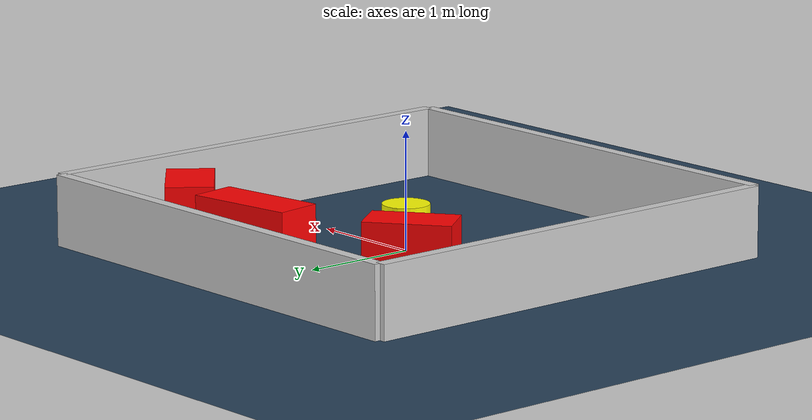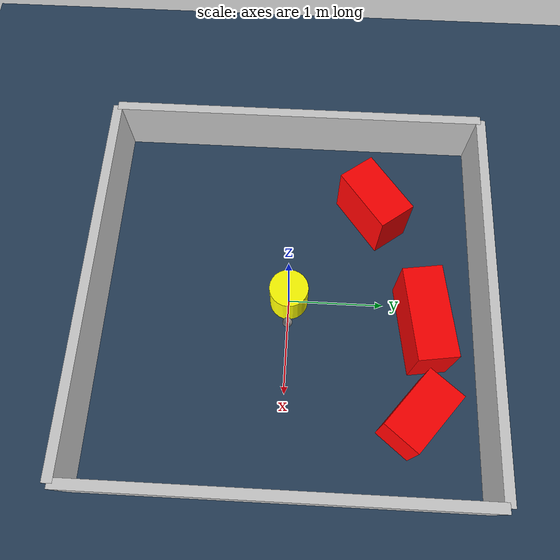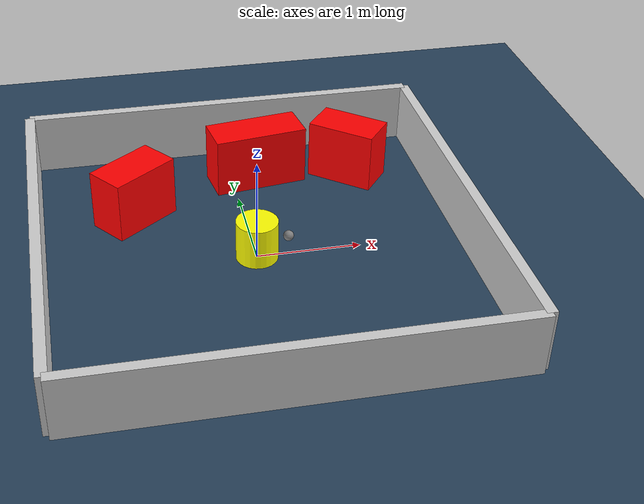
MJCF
<?xml version="1.0" ?>
<mujoco model="generated_environment">
  <option timestep="0.01" integrator="RK4" cone="elliptic"/>
  <default>
    <geom density="1"/>
  </default>
  <asset>
    <texture builtin="gradient" height="3072" rgb1="0.3 0.5 0.7" rgb2="0 0 0" type="skybox" width="512"/>
    <texture builtin="checker" height="300" mark="edge" markrgb="0.8 0.8 0.8" name="groundplane" rgb1="0.2 0.3 0.4" rgb2="0.1 0.2 0.3" type="2d" width="300"/>
    <material name="groundplane" reflectance="0.2" texrepeat="5 5" texture="groundplane" texuniform="true"/>
    <material name="robot" rgba="0.0 1.0 0.0 1"/>
  </asset>
  <worldbody>
    <light dir="0 0 -1" directional="true" pos="0 0 1.5"/>
    <geom condim="4" friction="1.0 0.005 0.001" material="groundplane" name="floor" size="0 0 0.05" type="plane"/>
    <body name="walls">
      <geom name="wall_1" condim="4" pos="-2.0 0.0 0.3" rgba="0.800000011920929 0.800000011920929 0.800000011920929 1.0" size="0.05 2.0 0.3" type="box"/>
      <geom name="wall_2" condim="4" pos="2.0 0.0 0.3" rgba="0.800000011920929 0.800000011920929 0.800000011920929 1.0" size="0.05 2.0 0.3" type="box"/>
      <geom name="wall_3" condim="4" pos="0.0 -2.0 0.3" rgba="0.800000011920929 0.800000011920929 0.800000011920929 1.0" size="2.0 0.05 0.3" type="box"/>
      <geom name="wall_4" condim="4" pos="0.0 2.0 0.3" rgba="0.800000011920929 0.800000011920929 0.800000011920929 1.0" size="2.0 0.05 0.3" type="box"/>
    </body>
    <body name="robot">
      <joint name="joint_x" type="slide" pos="0 0 0" axis="1 0 0"/>
      <joint name="joint_y" type="slide" pos="0 0 0" axis="0 1 0"/>
      <geom name="robot" type="sphere" pos="0.3 0.0 0.2" size="0.05" mass="5." friction="1.0 0.005 0.0001" condim="4" rgba="0.5 0.5 0.5 1.0"/>
      <site name="sensor_ball"/>
    </body>
    <body name="obstacle_movable_1">
      <geom name="obstacle_movable_1" condim="4" pos="0.0 0.0 0.2" euler="0 0 0.0" friction="1.0 0.005 0.001" rgba="1.0 1.0 0.0 1.0" size="0.2 0.2 0.0" type="cylinder" mass="0.1"/>
      <joint type="free"/>
    </body>
    <body name="obstacle_2_static">
      <geom name="obstacle_2_static" condim="4" pos="-1.0574446655455012 0.862919018130673 0.3" euler="0 0 216.97921909061893" friction="1.0 0.005 0.001" rgba="1 0 0 1" size="0.36137665012565523 0.2 0.3" type="box"/>
    </body>
    <body name="obstacle_3_static">
      <geom name="obstacle_3_static" condim="4" pos="1.198315804510388 1.2952515046872237 0.3" euler="0 0 320.8411713408115" friction="1.0 0.005 0.001" rgba="1 0 0 1" size="0.3448196181637554 0.2 0.3" type="box"/>
    </body>
    <body name="obstacle_4_static">
      <geom name="obstacle_4_static" condim="4" pos="0.24929636166614988 1.3791575512167757 0.3" euler="0 0 8.247690768695994" friction="1.0 0.005 0.001" rgba="1 0 0 1" size="0.46977537929720625 0.2 0.3" type="box"/>
    </body>
  </worldbody>
  <actuator>
    <motor name="actuator_x" joint="joint_x" gear="1" ctrlrange="-1 1"/>
    <motor name="actuator_y" joint="joint_y" gear="1" ctrlrange="-1 1"/>
  </actuator>
</mujoco>
